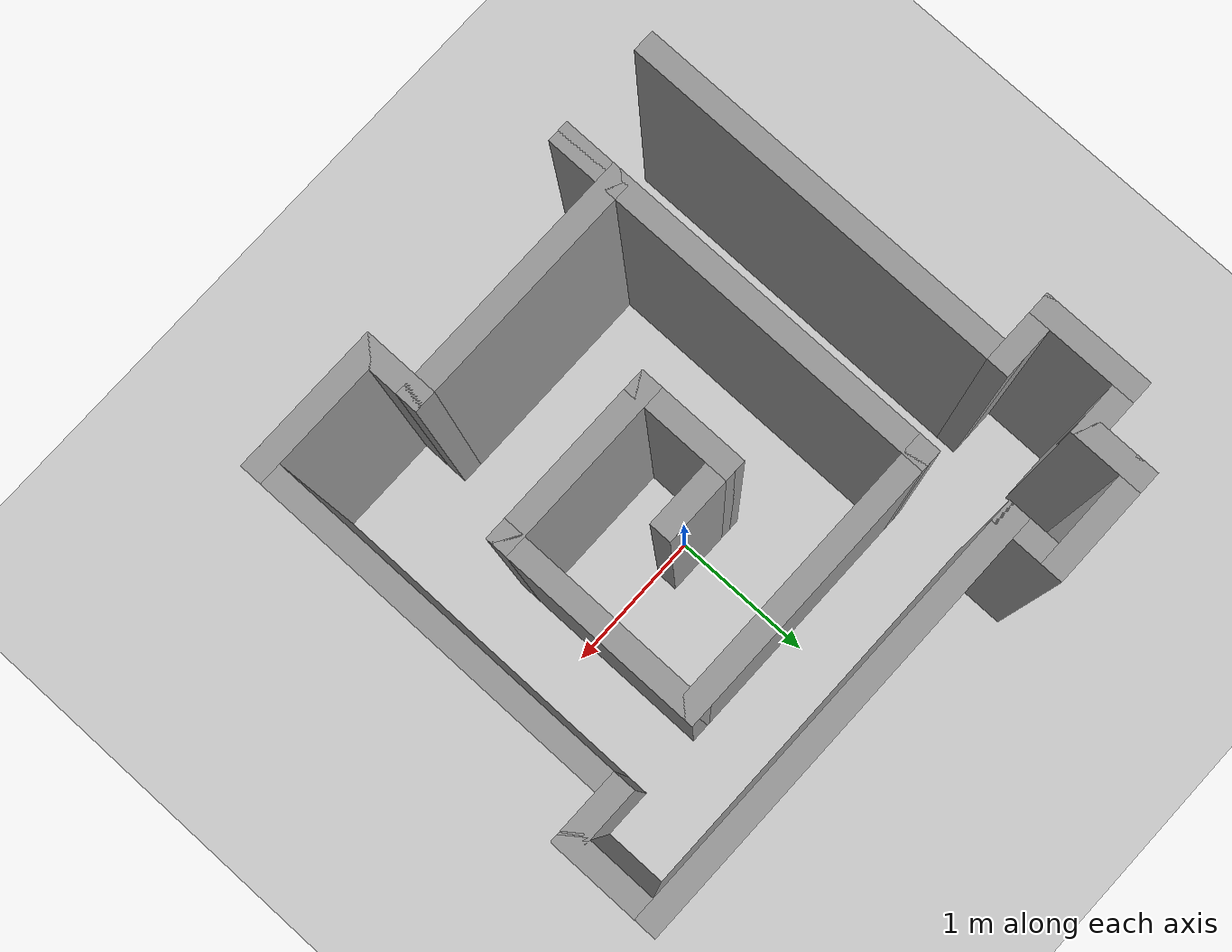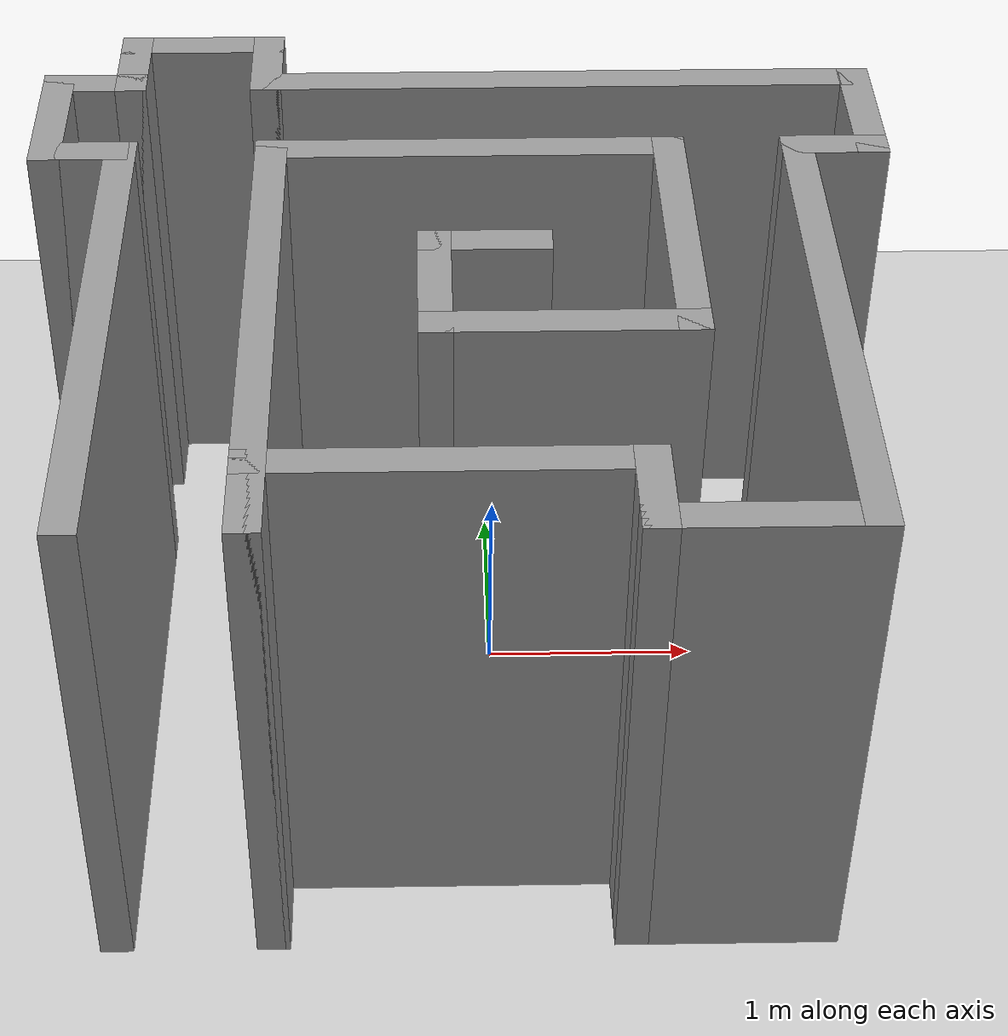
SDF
<sdf version="1.7">
 <world name="default">
  <light name="sun" type="directional">
   <pose>0 0 10 0 -0 0</pose>
   <diffuse>0.8 0.8 0.8 1</diffuse>
   <specular>0.2 0.2 0.2 1</specular>
   <attenuation>
    <range>1000</range>
    <constant>0.9</constant>
    <linear>0.01</linear>
    <quadratic>0.001</quadratic>
   </attenuation>
   <direction>-0.5 0.1 -0.9</direction>
   <spot><inner_angle>0</inner_angle><outer_angle>0</outer_angle><falloff>0</falloff></spot>
  </light>
  <model name="ground_plane">
   <static>1</static>
   <link name="link">
    <collision name="collision">
     <geometry><plane><normal>0 0 1</normal><size>100 100</size></plane></geometry>
     <surface><friction><ode><mu>100</mu><mu2>50</mu2></ode></friction></surface>
    </collision>
    <visual name="visual">
     <cast_shadows>0</cast_shadows>
     <geometry><plane><normal>0 0 1</normal><size>100 100</size></plane></geometry>
     <material>
      <script><uri>file://media/materials/scripts/gazebo.material</uri><name>Gazebo/Grey</name></script>
     </material>
    </visual>
   </link>
  </model>
  <gravity>0 0 -9.8</gravity>
  <magnetic_field>6e-06 2.3e-05 -4.2e-05</magnetic_field>
  <atmosphere type="adiabatic"/>
  <physics type="ode">
   <max_step_size>0.001</max_step_size>
   <real_time_factor>1</real_time_factor>
   <real_time_update_rate>1000</real_time_update_rate>
  </physics>
  <scene><ambient>0.4 0.4 0.4 1</ambient><background>0.7 0.7 0.7 1</background><shadows>1</shadows></scene>
  <audio><device>default</device></audio>
  <spherical_coordinates>
   <surface_model>EARTH_WGS84</surface_model>
   <latitude_deg>0</latitude_deg>
   <longitude_deg>0</longitude_deg>
   <elevation>0</elevation>
   <heading_deg>0</heading_deg>
  </spherical_coordinates>
  <model name="walls_map1_resized">
   <pose>-0.14293 -0.004382 0 0 -0 0</pose>
   <link name="Wall_26">
    <collision name="Wall_26_Collision">
     <geometry><box><size>2.75 0.15 2.5</size></box></geometry>
     <pose>0 0 1.25 0 -0 0</pose>
    </collision>
    <visual name="Wall_26_Visual">
     <pose>0 0 1.25 0 -0 0</pose>
     <geometry><box><size>2.75 0.15 2.5</size></box></geometry>
     <material>
      <script><uri>file://media/materials/scripts/gazebo.material</uri><name>Gazebo/Grey</name></script>
      <ambient>1 1 1 1</ambient>
     </material>
     <meta><layer>0</layer></meta>
    </visual>
    <pose>-1.575 -0.475 0 0 -0 1.5708</pose>
   </link>
   <link name="Wall_27">
    <collision name="Wall_27_Collision">
     <geometry><box><size>0.5 0.15 2.5</size></box></geometry>
     <pose>0 0 1.25 0 -0 0</pose>
    </collision>
    <visual name="Wall_27_Visual">
     <pose>0 0 1.25 0 -0 0</pose>
     <geometry><box><size>0.5 0.15 2.5</size></box></geometry>
     <material>
      <script><uri>file://media/materials/scripts/gazebo.material</uri><name>Gazebo/Grey</name></script>
      <ambient>1 1 1 1</ambient>
     </material>
     <meta><layer>0</layer></meta>
    </visual>
    <pose>-1.75 0.825 0 0 -0 3.14159</pose>
   </link>
   <link name="Wall_28">
    <collision name="Wall_28_Collision">
     <geometry><box><size>0.75 0.15 2.5</size></box></geometry>
     <pose>0 0 1.25 0 -0 0</pose>
    </collision>
    <visual name="Wall_28_Visual">
     <pose>0 0 1.25 0 -0 0</pose>
     <geometry><box><size>0.75 0.15 2.5</size></box></geometry>
     <material>
      <script><uri>file://media/materials/scripts/gazebo.material</uri><name>Gazebo/Grey</name></script>
      <ambient>1 1 1 1</ambient>
     </material>
     <meta><layer>0</layer></meta>
    </visual>
    <pose>-1.925 1.125 0 0 -0 1.5708</pose>
   </link>
   <link name="Wall_29">
    <collision name="Wall_29_Collision">
     <geometry><box><size>0.5 0.15 2.5</size></box></geometry>
     <pose>0 0 1.25 0 -0 0</pose>
    </collision>
    <visual name="Wall_29_Visual">
     <pose>0 0 1.25 0 -0 0</pose>
     <geometry><box><size>0.5 0.15 2.5</size></box></geometry>
     <material>
      <script><uri>file://media/materials/scripts/gazebo.material</uri><name>Gazebo/Grey</name></script>
      <ambient>1 1 1 1</ambient>
     </material>
     <meta><layer>0</layer></meta>
    </visual>
    <pose>-1.75 1.425 0 0 -0 0</pose>
   </link>
   <link name="Wall_30">
    <collision name="Wall_30_Collision">
     <geometry><box><size>0.5 0.15 2.5</size></box></geometry>
     <pose>0 0 1.25 0 -0 0</pose>
    </collision>
    <visual name="Wall_30_Visual">
     <pose>0 0 1.25 0 -0 0</pose>
     <geometry><box><size>0.5 0.15 2.5</size></box></geometry>
     <material>
      <script><uri>file://media/materials/scripts/gazebo.material</uri><name>Gazebo/Grey</name></script>
      <ambient>1 1 1 1</ambient>
     </material>
     <meta><layer>0</layer></meta>
    </visual>
    <pose>-1.575 1.6 0 0 -0 1.5708</pose>
   </link>
   <link name="Wall_31">
    <collision name="Wall_31_Collision">
     <geometry><box><size>0.8 0.15 2.5</size></box></geometry>
     <pose>0 0 1.25 0 -0 0</pose>
    </collision>
    <visual name="Wall_31_Visual">
     <pose>0 0 1.25 0 -0 0</pose>
     <geometry><box><size>0.8 0.15 2.5</size></box></geometry>
     <material>
      <script><uri>file://media/materials/scripts/gazebo.material</uri><name>Gazebo/Grey</name></script>
      <ambient>1 1 1 1</ambient>
     </material>
     <meta><layer>0</layer></meta>
    </visual>
    <pose>-1.25 1.775 0 0 -0 0</pose>
   </link>
   <link name="Wall_34">
    <collision name="Wall_34_Collision">
     <geometry><box><size>0.5 0.15 2.5</size></box></geometry>
     <pose>0 0 1.25 0 -0 0</pose>
    </collision>
    <visual name="Wall_34_Visual">
     <pose>0 0 1.25 0 -0 0</pose>
     <geometry><box><size>0.5 0.15 2.5</size></box></geometry>
     <material>
      <script><uri>file://media/materials/scripts/gazebo.material</uri><name>Gazebo/Grey</name></script>
      <ambient>1 1 1 1</ambient>
     </material>
     <meta><layer>0</layer></meta>
    </visual>
    <pose>-0.925 1.6 0 0 -0 -1.5708</pose>
   </link>
   <link name="Wall_35">
    <collision name="Wall_35_Collision">
     <geometry><box><size>3 0.15 2.5</size></box></geometry>
     <pose>0 0 1.25 0 -0 0</pose>
    </collision>
    <visual name="Wall_35_Visual">
     <pose>0 0 1.25 0 -0 0</pose>
     <geometry><box><size>3 0.15 2.5</size></box></geometry>
     <material>
      <script><uri>file://media/materials/scripts/gazebo.material</uri><name>Gazebo/Grey</name></script>
      <ambient>1 1 1 1</ambient>
     </material>
     <meta><layer>0</layer></meta>
    </visual>
    <pose>0.5 1.425 0 0 -0 0</pose>
   </link>
   <link name="Wall_36">
    <collision name="Wall_36_Collision">
     <geometry><box><size>0.75 0.15 2.5</size></box></geometry>
     <pose>0 0 1.25 0 -0 0</pose>
    </collision>
    <visual name="Wall_36_Visual">
     <pose>0 0 1.25 0 -0 0</pose>
     <geometry><box><size>0.75 0.15 2.5</size></box></geometry>
     <material>
      <script><uri>file://media/materials/scripts/gazebo.material</uri><name>Gazebo/Grey</name></script>
      <ambient>1 1 1 1</ambient>
     </material>
     <meta><layer>0</layer></meta>
    </visual>
    <pose>1.925 1.125 0 0 -0 -1.5708</pose>
   </link>
   <link name="Wall_37">
    <collision name="Wall_37_Collision">
     <geometry><box><size>0.5 0.15 2.5</size></box></geometry>
     <pose>0 0 1.25 0 -0 0</pose>
    </collision>
    <visual name="Wall_37_Visual">
     <pose>0 0 1.25 0 -0 0</pose>
     <geometry><box><size>0.5 0.15 2.5</size></box></geometry>
     <material>
      <script><uri>file://media/materials/scripts/gazebo.material</uri><name>Gazebo/Grey</name></script>
      <ambient>1 1 1 1</ambient>
     </material>
     <meta><layer>0</layer></meta>
    </visual>
    <pose>1.75 0.825 0 0 -0 3.14159</pose>
   </link>
   <link name="Wall_38">
    <collision name="Wall_38_Collision">
     <geometry><box><size>2.75 0.15 2.5</size></box></geometry>
     <pose>0 0 1.25 0 -0 0</pose>
    </collision>
    <visual name="Wall_38_Visual">
     <pose>0 0 1.25 0 -0 0</pose>
     <geometry><box><size>2.75 0.15 2.5</size></box></geometry>
     <material>
      <script><uri>file://media/materials/scripts/gazebo.material</uri><name>Gazebo/Grey</name></script>
      <ambient>1 1 1 1</ambient>
     </material>
     <meta><layer>0</layer></meta>
    </visual>
    <pose>1.575 -0.475 0 0 -0 -1.5708</pose>
   </link>
   <link name="Wall_39">
    <collision name="Wall_39_Collision">
     <geometry><box><size>1 0.15 2.5</size></box></geometry>
     <pose>0 0 1.25 0 -0 0</pose>
    </collision>
    <visual name="Wall_39_Visual">
     <pose>0 0 1.25 0 -0 0</pose>
     <geometry><box><size>1 0.15 2.5</size></box></geometry>
     <material>
      <script><uri>file://media/materials/scripts/gazebo.material</uri><name>Gazebo/Grey</name></script>
      <ambient>1 1 1 1</ambient>
     </material>
     <meta><layer>0</layer></meta>
    </visual>
    <pose>1.15 -1.775 0 0 -0 3.14159</pose>
   </link>
   <link name="Wall_40">
    <collision name="Wall_40_Collision">
     <geometry><box><size>0.5 0.15 2.5</size></box></geometry>
     <pose>0 0 1.25 0 -0 0</pose>
    </collision>
    <visual name="Wall_40_Visual">
     <pose>0 0 1.25 0 -0 0</pose>
     <geometry><box><size>0.5 0.15 2.5</size></box></geometry>
     <material>
      <script><uri>file://media/materials/scripts/gazebo.material</uri><name>Gazebo/Grey</name></script>
      <ambient>1 1 1 1</ambient>
     </material>
     <meta><layer>0</layer></meta>
    </visual>
    <pose>0.725 -1.6 0 0 -0 1.5708</pose>
   </link>
   <link name="Wall_41">
    <collision name="Wall_41_Collision">
     <geometry><box><size>1.75 0.15 2.5</size></box></geometry>
     <pose>0 0 1.25 0 -0 0</pose>
    </collision>
    <visual name="Wall_41_Visual">
     <pose>0 0 1.25 0 -0 0</pose>
     <geometry><box><size>1.75 0.15 2.5</size></box></geometry>
     <material>
      <script><uri>file://media/materials/scripts/gazebo.material</uri><name>Gazebo/Grey</name></script>
      <ambient>1 1 1 1</ambient>
     </material>
     <meta><layer>0</layer></meta>
    </visual>
    <pose>-0.075 -1.425 0 0 -0 3.14159</pose>
   </link>
   <link name="Wall_42">
    <collision name="Wall_42_Collision">
     <geometry><box><size>0.5 0.15 2.5</size></box></geometry>
     <pose>0 0 1.25 0 -0 0</pose>
    </collision>
    <visual name="Wall_42_Visual">
     <pose>0 0 1.25 0 -0 0</pose>
     <geometry><box><size>0.5 0.15 2.5</size></box></geometry>
     <material>
      <script><uri>file://media/materials/scripts/gazebo.material</uri><name>Gazebo/Grey</name></script>
      <ambient>1 1 1 1</ambient>
     </material>
     <meta><layer>0</layer></meta>
    </visual>
    <pose>-0.875 -1.6 0 0 -0 -1.5708</pose>
   </link>
   <link name="Wall_43">
    <collision name="Wall_43_Collision">
     <geometry><box><size>2.75 0.15 2.5</size></box></geometry>
     <pose>0 0 1.25 0 -0 0</pose>
    </collision>
    <visual name="Wall_43_Visual">
     <pose>0 0 1.25 0 -0 0</pose>
     <geometry><box><size>2.75 0.15 2.5</size></box></geometry>
     <material>
      <script><uri>file://media/materials/scripts/gazebo.material</uri><name>Gazebo/Grey</name></script>
      <ambient>1 1 1 1</ambient>
     </material>
     <meta><layer>0</layer></meta>
    </visual>
    <pose>-0.875 -0.475 0 0 -0 1.5708</pose>
   </link>
   <link name="Wall_44">
    <collision name="Wall_44_Collision">
     <geometry><box><size>2 0.15 2.5</size></box></geometry>
     <pose>0 0 1.25 0 -0 0</pose>
    </collision>
    <visual name="Wall_44_Visual">
     <pose>0 0 1.25 0 -0 0</pose>
     <geometry><box><size>2 0.15 2.5</size></box></geometry>
     <material>
      <script><uri>file://media/materials/scripts/gazebo.material</uri><name>Gazebo/Grey</name></script>
      <ambient>1 1 1 1</ambient>
     </material>
     <meta><layer>0</layer></meta>
    </visual>
    <pose>0.05 0.825 0 0 -0 0</pose>
   </link>
   <link name="Wall_45">
    <collision name="Wall_45_Collision">
     <geometry><box><size>1.5 0.15 2.5</size></box></geometry>
     <pose>0 0 1.25 0 -0 0</pose>
    </collision>
    <visual name="Wall_45_Visual">
     <pose>0 0 1.25 0 -0 0</pose>
     <geometry><box><size>1.5 0.15 2.5</size></box></geometry>
     <material>
      <script><uri>file://media/materials/scripts/gazebo.material</uri><name>Gazebo/Grey</name></script>
      <ambient>1 1 1 1</ambient>
     </material>
     <meta><layer>0</layer></meta>
    </visual>
    <pose>0.975 0.15 0 0 -0 -1.5708</pose>
   </link>
   <link name="Wall_46">
    <collision name="Wall_46_Collision">
     <geometry><box><size>1.25 0.15 2.5</size></box></geometry>
     <pose>0 0 1.25 0 -0 0</pose>
    </collision>
    <visual name="Wall_46_Visual">
     <pose>0 0 1.25 0 -0 0</pose>
     <geometry><box><size>1.25 0.15 2.5</size></box></geometry>
     <material>
      <script><uri>file://media/materials/scripts/gazebo.material</uri><name>Gazebo/Grey</name></script>
      <ambient>1 1 1 1</ambient>
     </material>
     <meta><layer>0</layer></meta>
    </visual>
    <pose>0.425 -0.525 0 0 -0 3.14159</pose>
   </link>
   <link name="Wall_47">
    <collision name="Wall_47_Collision">
     <geometry><box><size>0.75 0.15 2.5</size></box></geometry>
     <pose>0 0 1.25 0 -0 0</pose>
    </collision>
    <visual name="Wall_47_Visual">
     <pose>0 0 1.25 0 -0 0</pose>
     <geometry><box><size>0.75 0.15 2.5</size></box></geometry>
     <material>
      <script><uri>file://media/materials/scripts/gazebo.material</uri><name>Gazebo/Grey</name></script>
      <ambient>1 1 1 1</ambient>
     </material>
     <meta><layer>0</layer></meta>
    </visual>
    <pose>-0.125 -0.225 0 0 -0 1.5708</pose>
   </link>
   <link name="Wall_48">
    <collision name="Wall_48_Collision">
     <geometry><box><size>0.6 0.15 2.5</size></box></geometry>
     <pose>0 0 1.25 0 -0 0</pose>
    </collision>
    <visual name="Wall_48_Visual">
     <pose>0 0 1.25 0 -0 0</pose>
     <geometry><box><size>0.6 0.15 2.5</size></box></geometry>
     <material>
      <script><uri>file://media/materials/scripts/gazebo.material</uri><name>Gazebo/Grey</name></script>
      <ambient>1 1 1 1</ambient>
     </material>
     <meta><layer>0</layer></meta>
    </visual>
    <pose>0.1 0.075 0 0 -0 0</pose>
   </link>
   <static>1</static>
  </model>
 </world>
</sdf>
